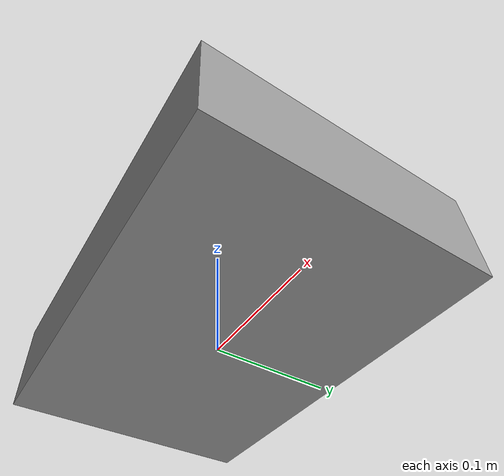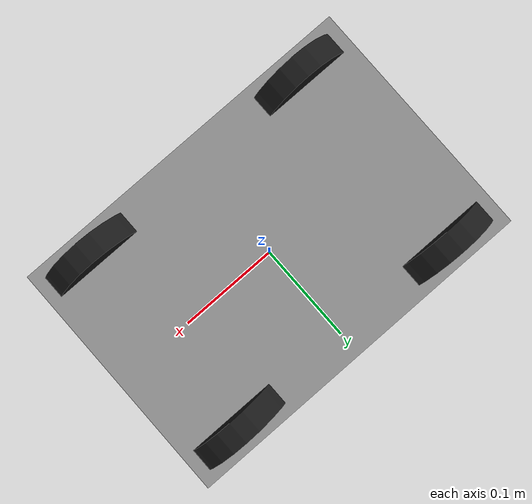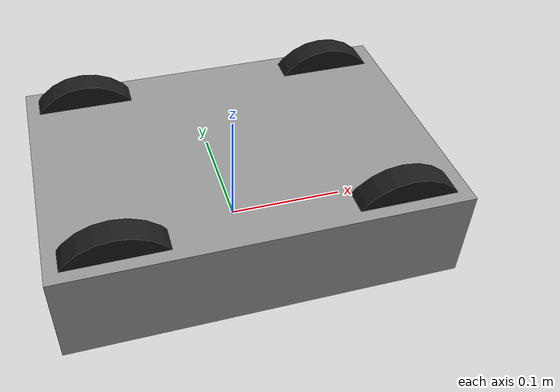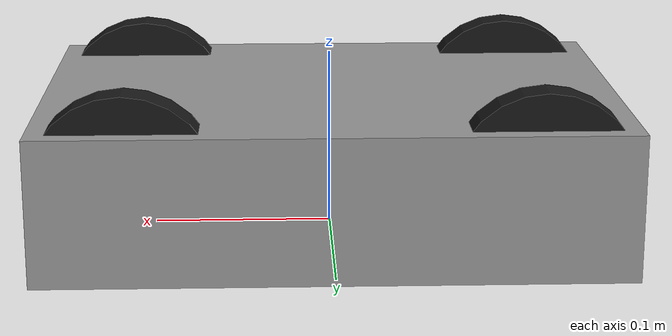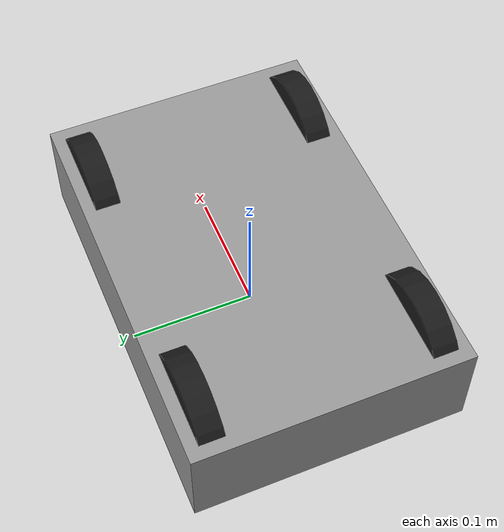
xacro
<?xml version="1.0"?>
<robot xmlns:xacro="http://ros.org/wiki/xacro" name="raspbot_v2_like">

  <!-- Simple 4-wheel skid-steer robot (dimensions are approximate placeholders). -->
  <xacro:property name="chassis_length" value="0.32"/>
  <xacro:property name="chassis_width"  value="0.22"/>
  <xacro:property name="chassis_height" value="0.08"/>

  <xacro:property name="wheel_radius" value="0.05"/>
  <xacro:property name="wheel_width"  value="0.02"/>

  <xacro:property name="wheelbase" value="0.22"/> <!-- front/back separation -->
  <xacro:property name="track"     value="0.18"/> <!-- left/right separation -->

  <link name="base_link"/>

  <link name="chassis_link">
    <inertial>
      <origin xyz="0 0 0" rpy="0 0 0"/>
      <mass value="2.0"/>
      <!-- Rough box inertia -->
      <inertia ixx="0.02" ixy="0.0" ixz="0.0" iyy="0.03" iyz="0.0" izz="0.04"/>
    </inertial>
    <visual>
      <origin xyz="0 0 ${chassis_height/2.0}" rpy="0 0 0"/>
      <geometry>
        <box size="${chassis_length} ${chassis_width} ${chassis_height}"/>
      </geometry>
      <material name="gray">
        <color rgba="0.6 0.6 0.6 1.0"/>
      </material>
    </visual>
    <collision>
      <origin xyz="0 0 ${chassis_height/2.0}" rpy="0 0 0"/>
      <geometry>
        <box size="${chassis_length} ${chassis_width} ${chassis_height}"/>
      </geometry>
    </collision>
  </link>

  <joint name="base_to_chassis" type="fixed">
    <parent link="base_link"/>
    <child link="chassis_link"/>
    <origin xyz="0 0 0" rpy="0 0 0"/>
  </joint>

  <xacro:macro name="wheel" params="name x y">
    <link name="${name}_link">
      <inertial>
        <origin xyz="0 0 0" rpy="0 0 0"/>
        <mass value="0.2"/>
        <inertia ixx="0.0002" ixy="0.0" ixz="0.0" iyy="0.0002" iyz="0.0" izz="0.0002"/>
      </inertial>
      <visual>
        <origin xyz="0 0 0" rpy="1.57079632679 0 0"/>
        <geometry>
          <cylinder radius="${wheel_radius}" length="${wheel_width}"/>
        </geometry>
        <material name="black">
          <color rgba="0.1 0.1 0.1 1.0"/>
        </material>
      </visual>
      <collision>
        <origin xyz="0 0 0" rpy="1.57079632679 0 0"/>
        <geometry>
          <cylinder radius="${wheel_radius}" length="${wheel_width}"/>
        </geometry>
      </collision>
    </link>

    <joint name="${name}_joint" type="continuous">
      <parent link="chassis_link"/>
      <child link="${name}_link"/>
      <origin xyz="${x} ${y} ${wheel_radius}" rpy="0 0 0"/>
      <axis xyz="0 1 0"/>
    </joint>
  </xacro:macro>

  <!-- Front left/right -->
  <xacro:wheel name="front_left_wheel"  x="${ wheelbase/2.0}" y="${ track/2.0}"/>
  <xacro:wheel name="front_right_wheel" x="${ wheelbase/2.0}" y="${-track/2.0}"/>
  <!-- Rear left/right -->
  <xacro:wheel name="rear_left_wheel"   x="${-wheelbase/2.0}" y="${ track/2.0}"/>
  <xacro:wheel name="rear_right_wheel"  x="${-wheelbase/2.0}" y="${-track/2.0}"/>

</robot>
